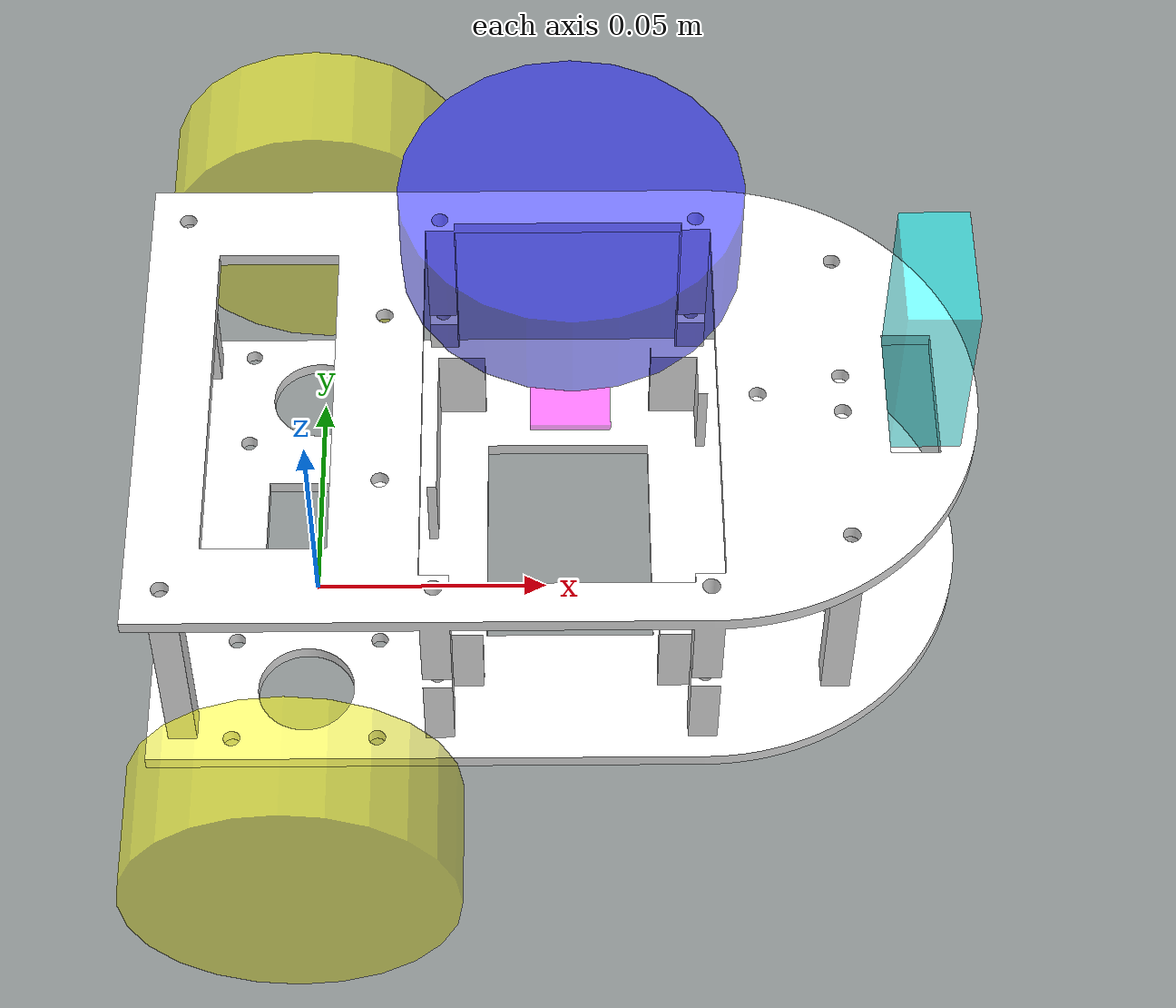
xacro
<?xml version="1.0"?>
<robot xmlns:xacro="http://ros.org/wiki/xacro" name="amr">
    <xacro:property name="track_width" value="0.110" />
    <xacro:property name="wheel_width" value="0.168" />

    <xacro:property name="base_link" value="base_link" />
    <xacro:property name="lidar_link" value="lidar_link" />
    <xacro:property name="camera_link" value="camera_link" />
    <xacro:property name="imu_link" value="imu_link" />
    <xacro:property name="chassis_link" value="chassis_link" />
    <xacro:property name="castor_link" value="castor_link" />

    <xacro:property name="left_wheel" value="left_wheel" />
    <xacro:property name="right_wheel" value="right_wheel" />

    <xacro:include filename="$(find description)/urdf/base.xacro" />
    <xacro:include filename="$(find description)/urdf/wheel.xacro" />
    <xacro:include filename="$(find description)/urdf/lidar.xacro" />
    <xacro:include filename="$(find description)/urdf/camera.xacro" />
    <xacro:include filename="$(find description)/urdf/imu.xacro" />
    <xacro:include filename="$(find description)/urdf/chassis.xacro" />
    <xacro:include filename="$(find description)/urdf/castor.xacro" />

    <xacro:property name="ground_clearance" value="${castor_radius*2+chassis_height/2}" />

    <xacro:base name="${base_link}" joint_xyz="0 0 ${wheel_radius}" />
    <xacro:wheel name="${left_wheel}" joint_xyz="0 ${wheel_width/2} 0" parent_name="${base_link}" />
    <xacro:wheel name="${right_wheel}" joint_xyz="0 -${wheel_width/2} 0" parent_name="${base_link}" />
    <xacro:chassis name="${chassis_link}" joint_xyz="${track_width/2} 0 -${wheel_radius-ground_clearance}" parent_name="${base_link}" />

    <xacro:castor name="${castor_link}" joint_xyz="${track_width/2} 0 -${ground_clearance-castor_radius}" parent_name="${chassis_link}" />
    <xacro:lidar name="${lidar_link}" joint_xyz="0 0 ${0.106-chassis_height/2}" parent_name="${chassis_link}" />
    <xacro:imu name="${imu_link}" joint_xyz="0 0 ${0.056-chassis_height/2}" parent_name="${chassis_link}" />
    <xacro:camera name="${camera_link}" joint_xyz="${track_width/2+0.016} 0 ${0.053+camera_height/2-chassis_height/2}" parent_name="${chassis_link}" />
</robot>

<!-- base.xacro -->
<robot xmlns:xacro="http://ros.org/wiki/xacro" name="base">
    <xacro:property name="link_xyz" value="0 0 0" />
    <xacro:property name="link_rpy" value="0 0 0" />

    <link name="base_footprint" />

    <xacro:macro name="base" params="name joint_xyz">
        <link name="${name}" />

        <joint name="${name}_joint" type="fixed">
            <origin xyz="${joint_xyz}" rpy="0 0 0" />
            <parent link="base_footprint" />
            <child link="${name}" />
        </joint>
    </xacro:macro>
</robot>

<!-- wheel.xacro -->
<robot xmlns:xacro="http://ros.org/wiki/xacro">
    <xacro:property name="wheel_radius" value="0.0335" />
    <xacro:property name="wheel_height" value="0.026" />

    <xacro:property name="link_xyz" value="0 0 0" />
    <xacro:property name="link_rpy" value="${pi/2} 0 0" />

    <xacro:macro name="wheel" params="name joint_xyz parent_name">
        <link name='${name}'>
            <visual>
                <origin xyz="${link_xyz}" rpy="${link_rpy}" />
                <geometry>
                    <cylinder radius="${wheel_radius}" length="${wheel_height}" />
                </geometry>
                <material name="yellow">
                    <color rgba="1.0 1.0 0.0 0.5" />
                </material>
            </visual>

            <collision>
                <origin xyz="${link_xyz}" rpy="${link_rpy}" />
                <geometry>
                    <cylinder radius="${wheel_radius}" length="${wheel_height}" />
                </geometry>
            </collision>
        </link>

        <joint name="${name}_joint" type="continuous">
            <parent link="${parent_name}" />
            <child link="${name}" />
            <origin xyz="${joint_xyz}" rpy="0 0 0" />
            <axis xyz="0 1 0" />
        </joint>
    </xacro:macro>
</robot>

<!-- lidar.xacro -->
<robot xmlns:xacro="http://ros.org/wiki/xacro">
    <xacro:property name="lidar_radius" value="0.0325" />
    <xacro:property name="lidar_height" value="0.020" />

    <xacro:macro name="lidar" params="name joint_xyz parent_name">
        <link name="${name}">
            <visual>
                <origin xyz="0 0 0" rpy="0 0 0" />
                <geometry>
                    <cylinder radius="${lidar_radius}" length="${lidar_height}" />
                </geometry>
                <material name="black">
                    <color rgba="0.0 0.0 1.0 0.5" />
                </material>
            </visual>

            <collision>
                <origin xyz="0 0 0" rpy="0 0 0" />
                <geometry>
                    <cylinder radius="${lidar_radius}" length="${lidar_height}" />
                </geometry>
            </collision>
        </link>

        <joint name="${name}_joint" type="fixed">
            <parent link="${parent_name}" />
            <child link="${name}" />
            <origin xyz="${joint_xyz}" rpy="0 0 0" />
        </joint>
    </xacro:macro>
</robot>

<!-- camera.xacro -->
<robot xmlns:xacro="http://ros.org/wiki/xacro">
    <xacro:property name="camera_length" value="0.027" />
    <xacro:property name="camera_width" value="0.014" />
    <xacro:property name="camera_height" value="0.040" />

    <xacro:macro name="camera" params="name joint_xyz parent_name">
        <link name="${name}">
            <visual>
                <origin xyz="0 0 0" rpy="0 0 0" />
                <geometry>
                    <box size="${camera_width} ${camera_length} ${camera_height}" />
                </geometry>
                <material name="orange">
                    <color rgba="0.0 1.0 1.0 0.5" />
                </material>
            </visual>

            <collision>
                <origin xyz="0 0 0" rpy="0 0 0" />
                <geometry>
                    <box size="${camera_width} ${camera_length} ${camera_height}" />
                </geometry>
            </collision>

        </link>

        <joint name="${name}_joint" type="fixed">
            <parent link="${parent_name}" />
            <child link="${name}" />
            <origin xyz="${joint_xyz}" rpy="0 0 0" />
        </joint>
    </xacro:macro>
</robot>

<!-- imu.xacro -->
<robot xmlns:xacro="http://ros.org/wiki/xacro">
    <xacro:property name="imu_length" value="0.016" />
    <xacro:property name="imu_width" value="0.021" />
    <xacro:property name="imu_height" value="0.0015" />

    <xacro:macro name="imu" params="name joint_xyz parent_name">
        <link name="${name}">
            <visual>
                <origin xyz="0 0 0" rpy="0 0 0" />
                <geometry>
                    <box size="${imu_length} ${imu_width} ${imu_height}" />
                </geometry>
                <material name="purple">
                    <color rgba="1.0 0.0 1.0 0.5" />
                </material>
            </visual>

            <collision>
                <origin xyz="0 0 0" rpy="0 0 0" />
                <geometry>
                    <box size="${imu_length} ${imu_width} ${imu_height}" />
                </geometry>
            </collision>
        </link>

        <joint name="${name}_joint" type="fixed">
            <parent link="${parent_name}" />
            <child link="${name}" />
            <origin xyz="${joint_xyz}" rpy="0 0 0" />
        </joint>
    </xacro:macro>
</robot>

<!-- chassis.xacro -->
<robot xmlns:xacro="http://ros.org/wiki/xacro">
    <xacro:property name="chassis_length" value="0.165" />
    <xacro:property name="chassis_width" value="0.110" />
    <xacro:property name="chassis_height" value="0.003" />

    <xacro:macro name="chassis" params="name joint_xyz parent_name">
        <link name='${name}'>
            <visual>
                <origin xyz="0 0 -${chassis_height/2}" rpy="0 0 0" />
                <geometry>
                    <mesh filename="package://description/mesh/lower_chassis.stl" scale="0.001 0.001 0.001" />
                </geometry>

                <material name="grey">
                    <color rgba="1 1 1 1" />
                </material>
            </visual>

            <visual>
                <origin xyz="0 0 ${chassis_height/2+0.050}" rpy="0 0 0" />
                <geometry>
                    <mesh filename="package://description/mesh/upper_chassis.stl" scale="0.001 0.001 0.001" />
                </geometry>
                <material name="grey">
                    <color rgba="1 1 1 1" />
                </material>
            </visual>
        </link>

        <joint name="${name}_joint" type="fixed">
            <parent link="${parent_name}" />
            <child link="${name}" />
            <origin xyz="${joint_xyz}" rpy="0 0 0" />
        </joint>
    </xacro:macro>
</robot>

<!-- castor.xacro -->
<robot xmlns:xacro="http://ros.org/wiki/xacro">

    <xacro:property name="castor_radius" value="0.0075" />

    <xacro:macro name="castor" params="name joint_xyz parent_name">
        <link name='${name}'>
            <visual>
                <origin xyz="0 0 0" rpy="0 0 0" />
                <geometry>
                    <sphere radius="${castor_radius}" />
                </geometry>
                <material name="gray">
                    <color rgba="0.5 0.5 0.5 1" />
                </material>
            </visual>
        </link>

        <joint name="${name}_joint" type="fixed">
            <parent link="${parent_name}" />
            <child link="${name}" />
            <origin xyz="${joint_xyz}" rpy="0 0 0" />
        </joint>

    </xacro:macro>

</robot>
